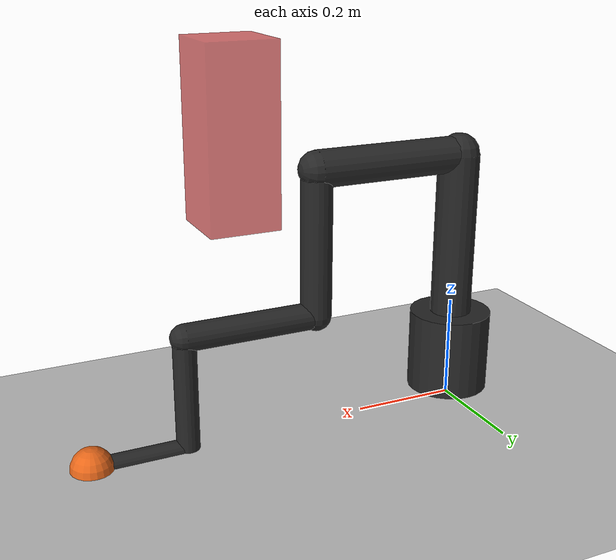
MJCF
<mujoco model="cobot_arm">
  <option gravity="0 0 -9.81" timestep="0.002" integrator="RK4"/>

  <asset>
    <material name="cobot_mat"  rgba="0.15 0.15 0.15 1"/>
    <material name="joint_mat"  rgba="0.85 0.85 0.85 1"/>
    <material name="ee_mat"     rgba="0.9  0.4  0.1  1"/>
    <material name="obstacle"   rgba="0.8  0.2  0.2  0.7"/>
  </asset>

  <worldbody>
    <geom name="floor" type="plane" size="2 2 0.1" rgba="0.75 0.75 0.75 1"/>

    <!-- Fixed obstacle (represents human limb at rest) -->
    <body name="obstacle_body" pos="0.5 0.1 0.6">
      <geom name="obstacle_geom" type="box" size="0.06 0.06 0.15"
            material="obstacle"
            solimp="0.99 0.999 0.001" solref="0.01 1"
            condim="3" mass="0"/>
    </body>

    <!-- Cobot base -->
    <body name="cobot_base" pos="0 0 0.1">
      <geom type="cylinder" size="0.08 0.08" material="cobot_mat" mass="5"/>

      <body name="cobot_l1" pos="0 0 0.08">
        <joint name="cj1" type="hinge" axis="0 0 1"
               range="-3.14 3.14" damping="5" armature="0.12"/>
        <geom type="capsule" fromto="0 0 0  0 0 0.32"
              size="0.04" material="cobot_mat" mass="2.5"/>

        <body name="cobot_l2" pos="0 0 0.32">
          <joint name="cj2" type="hinge" axis="0 1 0"
                 range="-1.57 1.57" damping="4" armature="0.1"/>
          <geom type="capsule" fromto="0 0 0  0.3 0 0"
                size="0.035" material="cobot_mat" mass="2.0"/>

          <body name="cobot_l3" pos="0.3 0 0">
            <joint name="cj3" type="hinge" axis="0 0 1"
                   range="-3.14 3.14" damping="3" armature="0.08"/>
            <geom type="capsule" fromto="0 0 0  0 0 -0.28"
                  size="0.03" material="cobot_mat" mass="1.6"/>

            <body name="cobot_l4" pos="0 0 -0.28">
              <joint name="cj4" type="hinge" axis="0 1 0"
                     range="-2.0 2.0" damping="2.5" armature="0.06"/>
              <geom type="capsule" fromto="0 0 0  0.26 0 0"
                    size="0.026" material="cobot_mat" mass="1.2"/>

              <body name="cobot_l5" pos="0.26 0 0">
                <joint name="cj5" type="hinge" axis="0 0 1"
                       range="-3.14 3.14" damping="2" armature="0.04"/>
                <geom type="capsule" fromto="0 0 0  0 0 -0.22"
                      size="0.022" material="cobot_mat" mass="0.9"/>

                <body name="cobot_l6" pos="0 0 -0.22">
                  <joint name="cj6" type="hinge" axis="0 1 0"
                         range="-2.0 2.0" damping="1.5" armature="0.03"/>
                  <geom type="capsule" fromto="0 0 0  0.18 0 0"
                        size="0.018" material="cobot_mat" mass="0.6"/>

                  <body name="cobot_l7" pos="0.18 0 0">
                    <joint name="cj7" type="hinge" axis="0 0 1"
                           range="-3.14 3.14" damping="1" armature="0.02"/>
                    <geom name="ee_geom" type="sphere" size="0.04"
                          material="ee_mat" mass="0.4"
                          solimp="0.99 0.999 0.001" solref="0.02 1"/>
                    <site name="ee_site" size="0.015" rgba="1 0 0 1"/>
                  </body>
                </body>
              </body>
            </body>
          </body>
        </body>
      </body>
    </body>
  </worldbody>

  <actuator>
    <motor name="a1" joint="cj1" gear="1" ctrllimited="true" ctrlrange="-87 87"/>
    <motor name="a2" joint="cj2" gear="1" ctrllimited="true" ctrlrange="-87 87"/>
    <motor name="a3" joint="cj3" gear="1" ctrllimited="true" ctrlrange="-87 87"/>
    <motor name="a4" joint="cj4" gear="1" ctrllimited="true" ctrlrange="-87 87"/>
    <motor name="a5" joint="cj5" gear="1" ctrllimited="true" ctrlrange="-12 12"/>
    <motor name="a6" joint="cj6" gear="1" ctrllimited="true" ctrlrange="-12 12"/>
    <motor name="a7" joint="cj7" gear="1" ctrllimited="true" ctrlrange="-12 12"/>
  </actuator>
</mujoco>
